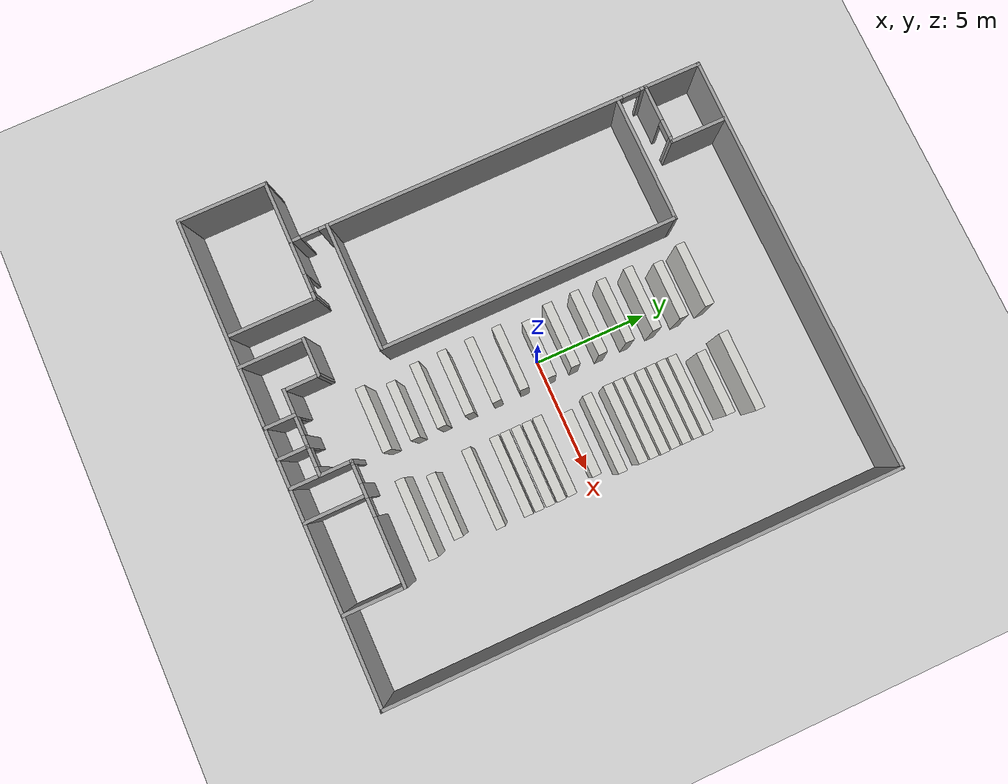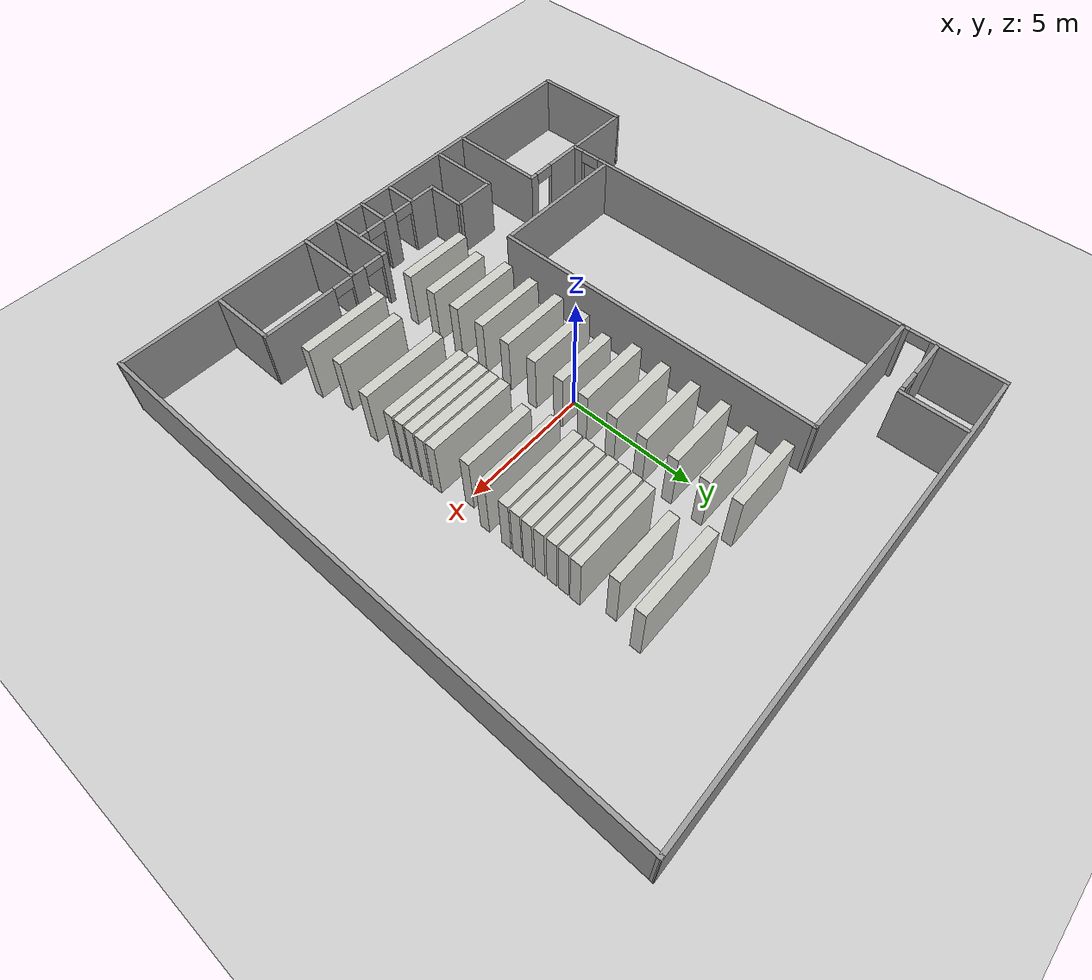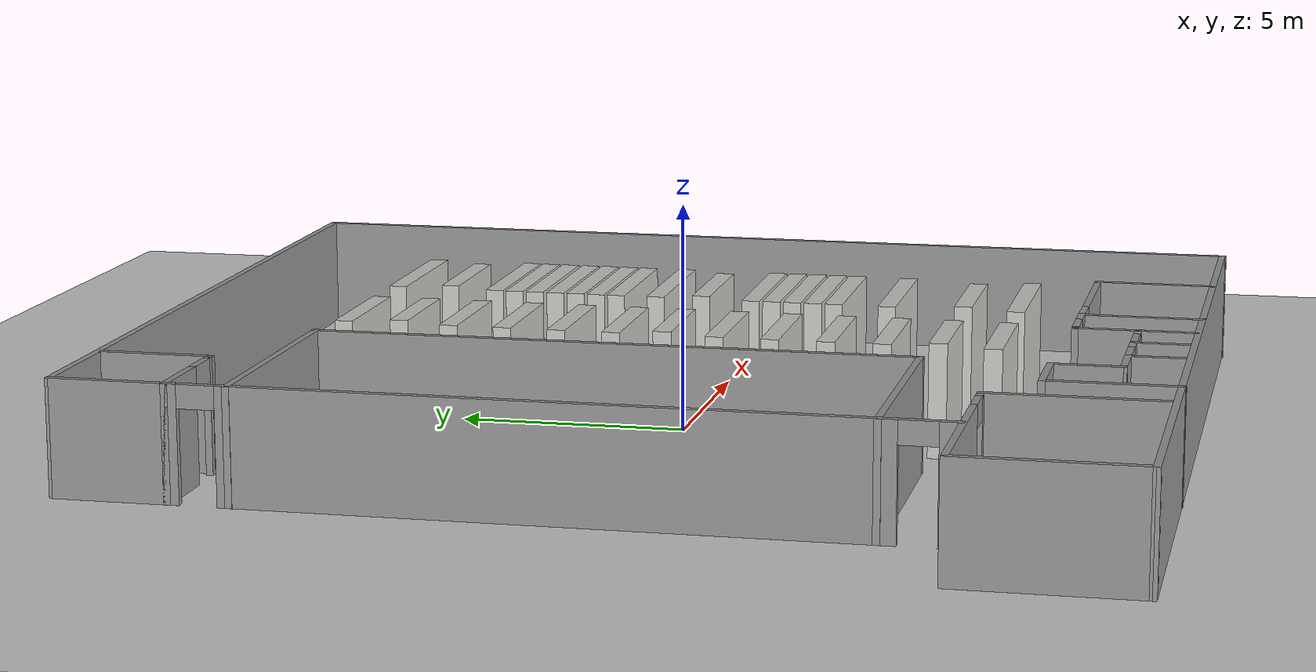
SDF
<sdf version="1.6">
 <world name="default">
  <model name="ground_plane">
   <static>1</static>
   <link name="link">
    <collision name="collision">
     <geometry><plane><normal>0 0 1</normal><size>100 100</size></plane></geometry>
     <surface>
      <contact><collide_bitmask>65535</collide_bitmask></contact>
      <friction><ode><mu>100</mu><mu2>50</mu2></ode></friction>
     </surface>
    </collision>
    <visual name="visual">
     <cast_shadows>0</cast_shadows>
     <geometry><plane><normal>0 0 1</normal><size>100 100</size></plane></geometry>
     <material>
      <script><uri>file://media/materials/scripts/gazebo.material</uri><name>Gazebo/Grey</name></script>
     </material>
    </visual>
   </link>
  </model>
  <model name="bi_mi_og">
   <pose>-0.524305 0.076707 0 0 -0 0</pose>
   <link name="Wall_100">
    <collision name="Wall_100_Collision">
     <geometry><box><size>3.4 0.4 2.5</size></box></geometry>
     <pose>0 0 1.25 0 -0 0</pose>
    </collision>
    <visual name="Wall_100_Visual">
     <pose>0 0 1.25 0 -0 0</pose>
     <geometry><box><size>3.4 0.4 2.5</size></box></geometry>
     <material>
      <script><uri>file://media/materials/scripts/gazebo.material</uri><name>Gazebo/CeilingTiled</name></script>
      <ambient>0.435294 0.796078 0.67451 1</ambient>
     </material>
     <meta><layer>0</layer></meta>
    </visual>
    <pose>4.47382 -1.12861 0 0 -0 0</pose>
   </link>
   <link name="Wall_102">
    <collision name="Wall_102_Collision">
     <geometry><box><size>3.4 0.4 2.5</size></box></geometry>
     <pose>0 0 1.25 0 -0 0</pose>
    </collision>
    <visual name="Wall_102_Visual">
     <pose>0 0 1.25 0 -0 0</pose>
     <geometry><box><size>3.4 0.4 2.5</size></box></geometry>
     <material>
      <script><uri>file://media/materials/scripts/gazebo.material</uri><name>Gazebo/CeilingTiled</name></script>
      <ambient>0.435294 0.796078 0.67451 1</ambient>
     </material>
     <meta><layer>0</layer></meta>
    </visual>
    <pose>4.48903 -1.6002 0 0 -0 0</pose>
   </link>
   <link name="Wall_104">
    <collision name="Wall_104_Collision">
     <geometry><box><size>3.4 0.4 2.5</size></box></geometry>
     <pose>0 0 1.25 0 -0 0</pose>
    </collision>
    <visual name="Wall_104_Visual">
     <pose>0 0 1.25 0 -0 0</pose>
     <geometry><box><size>3.4 0.4 2.5</size></box></geometry>
     <material>
      <script><uri>file://media/materials/scripts/gazebo.material</uri><name>Gazebo/CeilingTiled</name></script>
      <ambient>0.435294 0.796078 0.67451 1</ambient>
     </material>
     <meta><layer>0</layer></meta>
    </visual>
    <pose>4.48824 -2.07161 0 0 -0 0</pose>
   </link>
   <link name="Wall_106">
    <collision name="Wall_106_Collision">
     <geometry><box><size>3.4 0.4 2.5</size></box></geometry>
     <pose>0 0 1.25 0 -0 0</pose>
    </collision>
    <visual name="Wall_106_Visual">
     <pose>0 0 1.25 0 -0 0</pose>
     <geometry><box><size>3.4 0.4 2.5</size></box></geometry>
     <material>
      <script><uri>file://media/materials/scripts/gazebo.material</uri><name>Gazebo/CeilingTiled</name></script>
      <ambient>0.435294 0.796078 0.67451 1</ambient>
     </material>
     <meta><layer>0</layer></meta>
    </visual>
    <pose>4.48903 -2.54278 0 0 -0 0</pose>
   </link>
   <link name="Wall_108">
    <collision name="Wall_108_Collision">
     <geometry><box><size>3.4 0.4 2.5</size></box></geometry>
     <pose>0 0 1.25 0 -0 0</pose>
    </collision>
    <visual name="Wall_108_Visual">
     <pose>0 0 1.25 0 -0 0</pose>
     <geometry><box><size>3.4 0.4 2.5</size></box></geometry>
     <material>
      <script><uri>file://media/materials/scripts/gazebo.material</uri><name>Gazebo/CeilingTiled</name></script>
      <ambient>0.435294 0.796078 0.67451 1</ambient>
     </material>
     <meta><layer>0</layer></meta>
    </visual>
    <pose>4.48824 -3.01499 0 0 -0 0</pose>
   </link>
   <link name="Wall_11">
    <collision name="Wall_11_Collision">
     <geometry><box><size>21.3169 0.15 2.5</size></box></geometry>
     <pose>0 0 1.25 0 -0 0</pose>
    </collision>
    <visual name="Wall_11_Visual">
     <pose>0 0 1.25 0 -0 0</pose>
     <geometry><box><size>21.3169 0.15 2.5</size></box></geometry>
     <material>
      <script><uri>file://media/materials/scripts/gazebo.material</uri><name>Gazebo/Grey</name></script>
      <ambient>1 1 1 1</ambient>
     </material>
     <meta><layer>0</layer></meta>
    </visual>
    <pose>-3.3e-05 -11.1726 0 0 -0 0.001286</pose>
   </link>
   <link name="Wall_110">
    <collision name="Wall_110_Collision">
     <geometry><box><size>3.4 0.4 2.5</size></box></geometry>
     <pose>0 0 1.25 0 -0 0</pose>
    </collision>
    <visual name="Wall_110_Visual">
     <pose>0 0 1.25 0 -0 0</pose>
     <geometry><box><size>3.4 0.4 2.5</size></box></geometry>
     <material>
      <script><uri>file://media/materials/scripts/gazebo.material</uri><name>Gazebo/CeilingTiled</name></script>
      <ambient>0.435294 0.796078 0.67451 1</ambient>
     </material>
     <meta><layer>0</layer></meta>
    </visual>
    <pose>4.47361 -4.21578 0 0 -0 0</pose>
   </link>
   <link name="Wall_112">
    <collision name="Wall_112_Collision">
     <geometry><box><size>3.4 0.4 2.5</size></box></geometry>
     <pose>0 0 1.25 0 -0 0</pose>
    </collision>
    <visual name="Wall_112_Visual">
     <pose>0 0 1.25 0 -0 0</pose>
     <geometry><box><size>3.4 0.4 2.5</size></box></geometry>
     <material>
      <script><uri>file://media/materials/scripts/gazebo.material</uri><name>Gazebo/CeilingTiled</name></script>
      <ambient>0.435294 0.796078 0.67451 1</ambient>
     </material>
     <meta><layer>0</layer></meta>
    </visual>
    <pose>4.48555 -7.08842 0 0 -0 0</pose>
   </link>
   <link name="Wall_114">
    <collision name="Wall_114_Collision">
     <geometry><box><size>2.75 0.4 2.5</size></box></geometry>
     <pose>0 0 1.25 0 -0 0</pose>
    </collision>
    <visual name="Wall_114_Visual">
     <pose>0 0 1.25 0 -0 0</pose>
     <geometry><box><size>2.75 0.4 2.5</size></box></geometry>
     <material>
      <script><uri>file://media/materials/scripts/gazebo.material</uri><name>Gazebo/CeilingTiled</name></script>
      <ambient>0.435294 0.796078 0.67451 1</ambient>
     </material>
     <meta><layer>0</layer></meta>
    </visual>
    <pose>4.48252 -5.8822 0 0 -0 0</pose>
   </link>
   <link name="Wall_13">
    <collision name="Wall_13_Collision">
     <geometry><box><size>22.5 0.15 2.5</size></box></geometry>
     <pose>0 0 1.25 0 -0 0</pose>
    </collision>
    <visual name="Wall_13_Visual">
     <pose>0 0 1.25 0 -0 0</pose>
     <geometry><box><size>22.5 0.15 2.5</size></box></geometry>
     <material>
      <script><uri>file://media/materials/scripts/gazebo.material</uri><name>Gazebo/Grey</name></script>
      <ambient>1 1 1 1</ambient>
     </material>
     <meta><layer>0</layer></meta>
    </visual>
    <pose>10.5834 -0.004082 0 0 -0 1.5708</pose>
   </link>
   <link name="Wall_15">
    <collision name="Wall_15_Collision">
     <geometry><box><size>18.6299 0.15 2.5</size></box></geometry>
     <pose>0 0 1.25 0 -0 0</pose>
    </collision>
    <visual name="Wall_15_Visual">
     <pose>0 0 1.25 0 -0 0</pose>
     <geometry><box><size>18.6299 0.15 2.5</size></box></geometry>
     <material>
      <script><uri>file://media/materials/scripts/gazebo.material</uri><name>Gazebo/Grey</name></script>
      <ambient>1 1 1 1</ambient>
     </material>
     <meta><layer>0</layer></meta>
    </visual>
    <pose>1.34347 11.1709 0 0 -0 -3.13942</pose>
   </link>
   <link name="Wall_17">
    <collision name="Wall_17_Collision">
     <geometry><box><size>2.6 0.15 2.5</size></box></geometry>
     <pose>0 0 1.25 0 -0 0</pose>
    </collision>
    <visual name="Wall_17_Visual">
     <pose>0 0 1.25 0 -0 0</pose>
     <geometry><box><size>2.6 0.15 2.5</size></box></geometry>
     <material>
      <script><uri>file://media/materials/scripts/gazebo.material</uri><name>Gazebo/Grey</name></script>
      <ambient>1 1 1 1</ambient>
     </material>
     <meta><layer>0</layer></meta>
    </visual>
    <pose>-7.89648 9.92581 0 0 -0 -1.5708</pose>
   </link>
   <link name="Wall_19">
    <pose>-6.59648 8.70081 0 0 -0 0</pose>
    <visual name="Wall_19_Visual_0">
     <pose>-0.546292 0 1.25 0 -0 0</pose>
     <geometry><box><size>1.65742 0.15 2.5</size></box></geometry>
     <material>
      <script><uri>file://media/materials/scripts/gazebo.material</uri><name>Gazebo/Grey</name></script>
      <ambient>1 1 1 1</ambient>
     </material>
     <meta><layer>0</layer></meta>
    </visual>
    <collision name="Wall_19_Collision_0">
     <geometry><box><size>1.65742 0.15 2.5</size></box></geometry>
     <pose>-0.546292 0 1.25 0 -0 0</pose>
    </collision>
    <visual name="Wall_19_Visual_1">
     <pose>1.22871 0 1.25 0 -0 0</pose>
     <geometry><box><size>0.292584 0.15 2.5</size></box></geometry>
     <material>
      <script><uri>file://media/materials/scripts/gazebo.material</uri><name>Gazebo/Grey</name></script>
      <ambient>1 1 1 1</ambient>
     </material>
     <meta><layer>0</layer></meta>
    </visual>
    <collision name="Wall_19_Collision_1">
     <geometry><box><size>0.292584 0.15 2.5</size></box></geometry>
     <pose>1.22871 0 1.25 0 -0 0</pose>
    </collision>
    <visual name="Wall_19_Visual_2">
     <pose>0.682416 0 2.25 0 -0 0</pose>
     <geometry><box><size>0.8 0.15 0.5</size></box></geometry>
     <material>
      <script><uri>file://media/materials/scripts/gazebo.material</uri><name>Gazebo/Grey</name></script>
      <ambient>1 1 1 1</ambient>
     </material>
     <meta><layer>0</layer></meta>
    </visual>
    <collision name="Wall_19_Collision_2">
     <geometry><box><size>0.8 0.15 0.5</size></box></geometry>
     <pose>0.682416 0 2.25 0 -0 0</pose>
    </collision>
   </link>
   <link name="Wall_20">
    <collision name="Wall_20_Collision">
     <geometry><box><size>2.5 0.15 2.5</size></box></geometry>
     <pose>0 0 1.25 0 -0 0</pose>
    </collision>
    <visual name="Wall_20_Visual">
     <pose>0 0 1.25 0 -0 0</pose>
     <geometry><box><size>2.5 0.15 2.5</size></box></geometry>
     <material>
      <script><uri>file://media/materials/scripts/gazebo.material</uri><name>Gazebo/Grey</name></script>
      <ambient>1 1 1 1</ambient>
     </material>
     <meta><layer>0</layer></meta>
    </visual>
    <pose>-5.29648 9.8758 0 0 -0 1.5708</pose>
   </link>
   <link name="Wall_22">
    <pose>-7.89648 0.700805 0 0 -0 -1.5708</pose>
    <visual name="Wall_22_Visual_0">
     <pose>-7.90982 0 1.25 0 -0 0</pose>
     <geometry><box><size>0.330356 0.15 2.5</size></box></geometry>
     <material>
      <script><uri>file://media/materials/scripts/gazebo.material</uri><name>Gazebo/Grey</name></script>
      <ambient>1 1 1 1</ambient>
     </material>
     <meta><layer>0</layer></meta>
    </visual>
    <collision name="Wall_22_Collision_0">
     <geometry><box><size>0.330356 0.15 2.5</size></box></geometry>
     <pose>-7.90982 0 1.25 0 -0 0</pose>
    </collision>
    <visual name="Wall_22_Visual_1">
     <pose>-0.08023 0 1.25 0 -0 0</pose>
     <geometry><box><size>13.7288 0.15 2.5</size></box></geometry>
     <material>
      <script><uri>file://media/materials/scripts/gazebo.material</uri><name>Gazebo/Grey</name></script>
      <ambient>1 1 1 1</ambient>
     </material>
     <meta><layer>0</layer></meta>
    </visual>
    <collision name="Wall_22_Collision_1">
     <geometry><box><size>13.7288 0.15 2.5</size></box></geometry>
     <pose>-0.08023 0 1.25 0 -0 0</pose>
    </collision>
    <visual name="Wall_22_Visual_2">
     <pose>7.82959 0 1.25 0 -0 0</pose>
     <geometry><box><size>0.490815 0.15 2.5</size></box></geometry>
     <material>
      <script><uri>file://media/materials/scripts/gazebo.material</uri><name>Gazebo/Grey</name></script>
      <ambient>1 1 1 1</ambient>
     </material>
     <meta><layer>0</layer></meta>
    </visual>
    <collision name="Wall_22_Collision_2">
     <geometry><box><size>0.490815 0.15 2.5</size></box></geometry>
     <pose>7.82959 0 1.25 0 -0 0</pose>
    </collision>
    <visual name="Wall_22_Visual_3">
     <pose>-7.34464 0 2.25 0 -0 0</pose>
     <geometry><box><size>0.8 0.15 0.5</size></box></geometry>
     <material>
      <script><uri>file://media/materials/scripts/gazebo.material</uri><name>Gazebo/Grey</name></script>
      <ambient>1 1 1 1</ambient>
     </material>
     <meta><layer>0</layer></meta>
    </visual>
    <collision name="Wall_22_Collision_3">
     <geometry><box><size>0.8 0.15 0.5</size></box></geometry>
     <pose>-7.34464 0 2.25 0 -0 0</pose>
    </collision>
    <visual name="Wall_22_Visual_4">
     <pose>7.18419 0 2.25 0 -0 0</pose>
     <geometry><box><size>0.8 0.15 0.5</size></box></geometry>
     <material>
      <script><uri>file://media/materials/scripts/gazebo.material</uri><name>Gazebo/Grey</name></script>
      <ambient>1 1 1 1</ambient>
     </material>
     <meta><layer>0</layer></meta>
    </visual>
    <collision name="Wall_22_Collision_4">
     <geometry><box><size>0.8 0.15 0.5</size></box></geometry>
     <pose>7.18419 0 2.25 0 -0 0</pose>
    </collision>
   </link>
   <link name="Wall_24">
    <collision name="Wall_24_Collision">
     <geometry><box><size>4 0.15 2.5</size></box></geometry>
     <pose>0 0 1.25 0 -0 0</pose>
    </collision>
    <visual name="Wall_24_Visual">
     <pose>0 0 1.25 0 -0 0</pose>
     <geometry><box><size>4 0.15 2.5</size></box></geometry>
     <material>
      <script><uri>file://media/materials/scripts/gazebo.material</uri><name>Gazebo/Grey</name></script>
      <ambient>1 1 1 1</ambient>
     </material>
     <meta><layer>0</layer></meta>
    </visual>
    <pose>-10.5835 -9.2612 0 0 -0 1.5708</pose>
   </link>
   <link name="Wall_26">
    <pose>-7.94498 -7.3362 0 0 -0 0</pose>
    <visual name="Wall_26_Visual_0">
     <pose>-0.579795 0 1.25 0 -0 0</pose>
     <geometry><box><size>4.26728 0.15 2.5</size></box></geometry>
     <material>
      <script><uri>file://media/materials/scripts/gazebo.material</uri><name>Gazebo/Grey</name></script>
      <ambient>1 1 1 1</ambient>
     </material>
     <meta><layer>0</layer></meta>
    </visual>
    <collision name="Wall_26_Collision_0">
     <geometry><box><size>4.26728 0.15 2.5</size></box></geometry>
     <pose>-0.579795 0 1.25 0 -0 0</pose>
    </collision>
    <visual name="Wall_26_Visual_1">
     <pose>2.53364 0 1.25 0 -0 0</pose>
     <geometry><box><size>0.359591 0.15 2.5</size></box></geometry>
     <material>
      <script><uri>file://media/materials/scripts/gazebo.material</uri><name>Gazebo/Grey</name></script>
      <ambient>1 1 1 1</ambient>
     </material>
     <meta><layer>0</layer></meta>
    </visual>
    <collision name="Wall_26_Collision_1">
     <geometry><box><size>0.359591 0.15 2.5</size></box></geometry>
     <pose>2.53364 0 1.25 0 -0 0</pose>
    </collision>
    <visual name="Wall_26_Visual_2">
     <pose>1.95384 0 2.25 0 -0 0</pose>
     <geometry><box><size>0.8 0.15 0.5</size></box></geometry>
     <material>
      <script><uri>file://media/materials/scripts/gazebo.material</uri><name>Gazebo/Grey</name></script>
      <ambient>1 1 1 1</ambient>
     </material>
     <meta><layer>0</layer></meta>
    </visual>
    <collision name="Wall_26_Collision_2">
     <geometry><box><size>0.8 0.15 0.5</size></box></geometry>
     <pose>1.95384 0 2.25 0 -0 0</pose>
    </collision>
   </link>
   <link name="Wall_28">
    <collision name="Wall_28_Collision">
     <geometry><box><size>3.9 0.15 2.5</size></box></geometry>
     <pose>0 0 1.25 0 -0 0</pose>
    </collision>
    <visual name="Wall_28_Visual">
     <pose>0 0 1.25 0 -0 0</pose>
     <geometry><box><size>3.9 0.15 2.5</size></box></geometry>
     <material>
      <script><uri>file://media/materials/scripts/gazebo.material</uri><name>Gazebo/Grey</name></script>
      <ambient>1 1 1 1</ambient>
     </material>
     <meta><layer>0</layer></meta>
    </visual>
    <pose>-5.30648 -9.2112 0 0 -0 -1.5708</pose>
   </link>
   <link name="Wall_30">
    <collision name="Wall_30_Collision">
     <geometry><box><size>5.75 0.15 2.5</size></box></geometry>
     <pose>0 0 1.25 0 -0 0</pose>
    </collision>
    <visual name="Wall_30_Visual">
     <pose>0 0 1.25 0 -0 0</pose>
     <geometry><box><size>5.75 0.15 2.5</size></box></geometry>
     <material>
      <script><uri>file://media/materials/scripts/gazebo.material</uri><name>Gazebo/Grey</name></script>
      <ambient>1 1 1 1</ambient>
     </material>
     <meta><layer>0</layer></meta>
    </visual>
    <pose>-5.10418 -5.69691 0 0 -0 0</pose>
   </link>
   <link name="Wall_31">
    <collision name="Wall_31_Collision">
     <geometry><box><size>13.25 0.15 2.5</size></box></geometry>
     <pose>0 0 1.25 0 -0 0</pose>
    </collision>
    <visual name="Wall_31_Visual">
     <pose>0 0 1.25 0 -0 0</pose>
     <geometry><box><size>13.25 0.15 2.5</size></box></geometry>
     <material>
      <script><uri>file://media/materials/scripts/gazebo.material</uri><name>Gazebo/Grey</name></script>
      <ambient>1 1 1 1</ambient>
     </material>
     <meta><layer>0</layer></meta>
    </visual>
    <pose>-2.30418 0.853088 0 0 -0 1.5708</pose>
   </link>
   <link name="Wall_32">
    <collision name="Wall_32_Collision">
     <geometry><box><size>5.75 0.15 2.5</size></box></geometry>
     <pose>0 0 1.25 0 -0 0</pose>
    </collision>
    <visual name="Wall_32_Visual">
     <pose>0 0 1.25 0 -0 0</pose>
     <geometry><box><size>5.75 0.15 2.5</size></box></geometry>
     <material>
      <script><uri>file://media/materials/scripts/gazebo.material</uri><name>Gazebo/Grey</name></script>
      <ambient>1 1 1 1</ambient>
     </material>
     <meta><layer>0</layer></meta>
    </visual>
    <pose>-5.10418 7.40309 0 0 -0 3.14159</pose>
   </link>
   <link name="Wall_34">
    <collision name="Wall_34_Collision">
     <geometry><box><size>2.75 0.15 2.5</size></box></geometry>
     <pose>0 0 1.25 0 -0 0</pose>
    </collision>
    <visual name="Wall_34_Visual">
     <pose>0 0 1.25 0 -0 0</pose>
     <geometry><box><size>2.75 0.15 2.5</size></box></geometry>
     <material>
      <script><uri>file://media/materials/scripts/gazebo.material</uri><name>Gazebo/Grey</name></script>
      <ambient>1 1 1 1</ambient>
     </material>
     <meta><layer>0</layer></meta>
    </visual>
    <pose>6.70073 -9.83844 0 0 -0 1.5708</pose>
   </link>
   <link name="Wall_35">
    <pose>4.02573 -8.53843 0 0 -0 3.14159</pose>
    <visual name="Wall_35_Visual_0">
     <pose>-1.23302 0 1.25 0 -0 0</pose>
     <geometry><box><size>3.03397 0.15 2.5</size></box></geometry>
     <material>
      <script><uri>file://media/materials/scripts/gazebo.material</uri><name>Gazebo/Grey</name></script>
      <ambient>1 1 1 1</ambient>
     </material>
     <meta><layer>0</layer></meta>
    </visual>
    <collision name="Wall_35_Collision_0">
     <geometry><box><size>3.03397 0.15 2.5</size></box></geometry>
     <pose>-1.23302 0 1.25 0 -0 0</pose>
    </collision>
    <visual name="Wall_35_Visual_1">
     <pose>1.39809 0 1.25 0 -0 0</pose>
     <geometry><box><size>0.62824 0.15 2.5</size></box></geometry>
     <material>
      <script><uri>file://media/materials/scripts/gazebo.material</uri><name>Gazebo/Grey</name></script>
      <ambient>1 1 1 1</ambient>
     </material>
     <meta><layer>0</layer></meta>
    </visual>
    <collision name="Wall_35_Collision_1">
     <geometry><box><size>0.62824 0.15 2.5</size></box></geometry>
     <pose>1.39809 0 1.25 0 -0 0</pose>
    </collision>
    <visual name="Wall_35_Visual_2">
     <pose>2.6311 0 1.25 0 -0 0</pose>
     <geometry><box><size>0.237794 0.15 2.5</size></box></geometry>
     <material>
      <script><uri>file://media/materials/scripts/gazebo.material</uri><name>Gazebo/Grey</name></script>
      <ambient>1 1 1 1</ambient>
     </material>
     <meta><layer>0</layer></meta>
    </visual>
    <collision name="Wall_35_Collision_2">
     <geometry><box><size>0.237794 0.15 2.5</size></box></geometry>
     <pose>2.6311 0 1.25 0 -0 0</pose>
    </collision>
    <visual name="Wall_35_Visual_3">
     <pose>0.683966 0 2.25 0 -0 0</pose>
     <geometry><box><size>0.8 0.15 0.5</size></box></geometry>
     <material>
      <script><uri>file://media/materials/scripts/gazebo.material</uri><name>Gazebo/Grey</name></script>
      <ambient>1 1 1 1</ambient>
     </material>
     <meta><layer>0</layer></meta>
    </visual>
    <collision name="Wall_35_Collision_3">
     <geometry><box><size>0.8 0.15 0.5</size></box></geometry>
     <pose>0.683966 0 2.25 0 -0 0</pose>
    </collision>
    <visual name="Wall_35_Visual_4">
     <pose>2.11221 0 2.25 0 -0 0</pose>
     <geometry><box><size>0.8 0.15 0.5</size></box></geometry>
     <material>
      <script><uri>file://media/materials/scripts/gazebo.material</uri><name>Gazebo/Grey</name></script>
      <ambient>1 1 1 1</ambient>
     </material>
     <meta><layer>0</layer></meta>
    </visual>
    <collision name="Wall_35_Collision_4">
     <geometry><box><size>0.8 0.15 0.5</size></box></geometry>
     <pose>2.11221 0 2.25 0 -0 0</pose>
    </collision>
   </link>
   <link name="Wall_36">
    <collision name="Wall_36_Collision">
     <geometry><box><size>2.75 0.15 2.5</size></box></geometry>
     <pose>0 0 1.25 0 -0 0</pose>
    </collision>
    <visual name="Wall_36_Visual">
     <pose>0 0 1.25 0 -0 0</pose>
     <geometry><box><size>2.75 0.15 2.5</size></box></geometry>
     <material>
      <script><uri>file://media/materials/scripts/gazebo.material</uri><name>Gazebo/Grey</name></script>
      <ambient>1 1 1 1</ambient>
     </material>
     <meta><layer>0</layer></meta>
    </visual>
    <pose>1.35073 -9.83844 0 0 -0 -1.5708</pose>
   </link>
   <link name="Wall_38">
    <collision name="Wall_38_Collision">
     <geometry><box><size>2.75 0.15 2.5</size></box></geometry>
     <pose>0 0 1.25 0 -0 0</pose>
    </collision>
    <visual name="Wall_38_Visual">
     <pose>0 0 1.25 0 -0 0</pose>
     <geometry><box><size>2.75 0.15 2.5</size></box></geometry>
     <material>
      <script><uri>file://media/materials/scripts/gazebo.material</uri><name>Gazebo/Grey</name></script>
      <ambient>1 1 1 1</ambient>
     </material>
     <meta><layer>0</layer></meta>
    </visual>
    <pose>2.81881 -9.8639 0 0 -0 -1.5708</pose>
   </link>
   <link name="Wall_40">
    <pose>-0.499477 -9.89119 0 0 -0 3.14159</pose>
    <visual name="Wall_40_Visual_0">
     <pose>-1.70534 0 1.25 0 -0 0</pose>
     <geometry><box><size>0.43932 0.15 2.5</size></box></geometry>
     <material>
      <script><uri>file://media/materials/scripts/gazebo.material</uri><name>Gazebo/Grey</name></script>
      <ambient>1 1 1 1</ambient>
     </material>
     <meta><layer>0</layer></meta>
    </visual>
    <collision name="Wall_40_Collision_0">
     <geometry><box><size>0.43932 0.15 2.5</size></box></geometry>
     <pose>-1.70534 0 1.25 0 -0 0</pose>
    </collision>
    <visual name="Wall_40_Visual_1">
     <pose>-0.401819 0 1.25 0 -0 0</pose>
     <geometry><box><size>0.567723 0.15 2.5</size></box></geometry>
     <material>
      <script><uri>file://media/materials/scripts/gazebo.material</uri><name>Gazebo/Grey</name></script>
      <ambient>1 1 1 1</ambient>
     </material>
     <meta><layer>0</layer></meta>
    </visual>
    <collision name="Wall_40_Collision_1">
     <geometry><box><size>0.567723 0.15 2.5</size></box></geometry>
     <pose>-0.401819 0 1.25 0 -0 0</pose>
    </collision>
    <visual name="Wall_40_Visual_2">
     <pose>1.30352 0 1.25 0 -0 0</pose>
     <geometry><box><size>1.24296 0.15 2.5</size></box></geometry>
     <material>
      <script><uri>file://media/materials/scripts/gazebo.material</uri><name>Gazebo/Grey</name></script>
      <ambient>1 1 1 1</ambient>
     </material>
     <meta><layer>0</layer></meta>
    </visual>
    <collision name="Wall_40_Collision_2">
     <geometry><box><size>1.24296 0.15 2.5</size></box></geometry>
     <pose>1.30352 0 1.25 0 -0 0</pose>
    </collision>
    <visual name="Wall_40_Visual_3">
     <pose>-1.08568 0 2.25 0 -0 0</pose>
     <geometry><box><size>0.8 0.15 0.5</size></box></geometry>
     <material>
      <script><uri>file://media/materials/scripts/gazebo.material</uri><name>Gazebo/Grey</name></script>
      <ambient>1 1 1 1</ambient>
     </material>
     <meta><layer>0</layer></meta>
    </visual>
    <collision name="Wall_40_Collision_3">
     <geometry><box><size>0.8 0.15 0.5</size></box></geometry>
     <pose>-1.08568 0 2.25 0 -0 0</pose>
    </collision>
    <visual name="Wall_40_Visual_4">
     <pose>0.282043 0 2.25 0 -0 0</pose>
     <geometry><box><size>0.8 0.15 0.5</size></box></geometry>
     <material>
      <script><uri>file://media/materials/scripts/gazebo.material</uri><name>Gazebo/Grey</name></script>
      <ambient>1 1 1 1</ambient>
     </material>
     <meta><layer>0</layer></meta>
    </visual>
    <collision name="Wall_40_Collision_4">
     <geometry><box><size>0.8 0.15 0.5</size></box></geometry>
     <pose>0.282043 0 2.25 0 -0 0</pose>
    </collision>
   </link>
   <link name="Wall_42">
    <collision name="Wall_42_Collision">
     <geometry><box><size>1.65 0.15 2.5</size></box></geometry>
     <pose>0 0 1.25 0 -0 0</pose>
    </collision>
    <visual name="Wall_42_Visual">
     <pose>0 0 1.25 0 -0 0</pose>
     <geometry><box><size>1.65 0.15 2.5</size></box></geometry>
     <material>
      <script><uri>file://media/materials/scripts/gazebo.material</uri><name>Gazebo/Grey</name></script>
      <ambient>1 1 1 1</ambient>
     </material>
     <meta><layer>0</layer></meta>
    </visual>
    <pose>-2.34948 -9.14119 0 0 -0 1.5708</pose>
   </link>
   <link name="Wall_44">
    <collision name="Wall_44_Collision">
     <geometry><box><size>1.75 0.15 2.5</size></box></geometry>
     <pose>0 0 1.25 0 -0 0</pose>
    </collision>
    <visual name="Wall_44_Visual">
     <pose>0 0 1.25 0 -0 0</pose>
     <geometry><box><size>1.75 0.15 2.5</size></box></geometry>
     <material>
      <script><uri>file://media/materials/scripts/gazebo.material</uri><name>Gazebo/Grey</name></script>
      <ambient>1 1 1 1</ambient>
     </material>
     <meta><layer>0</layer></meta>
    </visual>
    <pose>-3.14948 -8.39119 0 0 -0 3.14159</pose>
   </link>
   <link name="Wall_45">
    <collision name="Wall_45_Collision">
     <geometry><box><size>2.95 0.15 2.5</size></box></geometry>
     <pose>0 0 1.25 0 -0 0</pose>
    </collision>
    <visual name="Wall_45_Visual">
     <pose>0 0 1.25 0 -0 0</pose>
     <geometry><box><size>2.95 0.15 2.5</size></box></geometry>
     <material>
      <script><uri>file://media/materials/scripts/gazebo.material</uri><name>Gazebo/Grey</name></script>
      <ambient>1 1 1 1</ambient>
     </material>
     <meta><layer>0</layer></meta>
    </visual>
    <pose>-3.94948 -9.7912 0 0 -0 -1.5708</pose>
   </link>
   <link name="Wall_47">
    <collision name="Wall_47_Collision">
     <geometry><box><size>1.4 0.15 2.5</size></box></geometry>
     <pose>0 0 1.25 0 -0 0</pose>
    </collision>
    <visual name="Wall_47_Visual">
     <pose>0 0 1.25 0 -0 0</pose>
     <geometry><box><size>1.4 0.15 2.5</size></box></geometry>
     <material>
      <script><uri>file://media/materials/scripts/gazebo.material</uri><name>Gazebo/Grey</name></script>
      <ambient>1 1 1 1</ambient>
     </material>
     <meta><layer>0</layer></meta>
    </visual>
    <pose>-1.26448 -10.5162 0 0 -0 -1.5708</pose>
   </link>
   <link name="Wall_49">
    <collision name="Wall_49_Collision">
     <geometry><box><size>1.4 0.15 2.5</size></box></geometry>
     <pose>0 0 1.25 0 -0 0</pose>
    </collision>
    <visual name="Wall_49_Visual">
     <pose>0 0 1.25 0 -0 0</pose>
     <geometry><box><size>1.4 0.15 2.5</size></box></geometry>
     <material>
      <script><uri>file://media/materials/scripts/gazebo.material</uri><name>Gazebo/Grey</name></script>
      <ambient>1 1 1 1</ambient>
     </material>
     <meta><layer>0</layer></meta>
    </visual>
    <pose>0.103523 -10.5162 0 0 -0 -1.5708</pose>
   </link>
   <link name="Wall_51">
    <collision name="Wall_51_Collision">
     <geometry><box><size>2.8 0.4 2.5</size></box></geometry>
     <pose>0 0 1.25 0 -0 0</pose>
    </collision>
    <visual name="Wall_51_Visual">
     <pose>0 0 1.25 0 -0 0</pose>
     <geometry><box><size>2.8 0.4 2.5</size></box></geometry>
     <material>
      <script><uri>file://media/materials/scripts/gazebo.material</uri><name>Gazebo/CeilingTiled</name></script>
      <ambient>0.435294 0.796078 0.67451 1</ambient>
     </material>
     <meta><layer>0</layer></meta>
    </visual>
    <pose>0.173523 -7.08307 0 0 -0 0</pose>
   </link>
   <link name="Wall_53">
    <collision name="Wall_53_Collision">
     <geometry><box><size>2.5 0.4 2.5</size></box></geometry>
     <pose>0 0 1.25 0 -0 0</pose>
    </collision>
    <visual name="Wall_53_Visual">
     <pose>0 0 1.25 0 -0 0</pose>
     <geometry><box><size>2.5 0.4 2.5</size></box></geometry>
     <material>
      <script><uri>file://media/materials/scripts/gazebo.material</uri><name>Gazebo/CeilingTiled</name></script>
      <ambient>0.435294 0.796078 0.67451 1</ambient>
     </material>
     <meta><layer>0</layer></meta>
    </visual>
    <pose>0.341315 -5.87999 0 0 -0 0</pose>
   </link>
   <link name="Wall_55">
    <collision name="Wall_55_Collision">
     <geometry><box><size>2.8 0.4 2.5</size></box></geometry>
     <pose>0 0 1.25 0 -0 0</pose>
    </collision>
    <visual name="Wall_55_Visual">
     <pose>0 0 1.25 0 -0 0</pose>
     <geometry><box><size>2.8 0.4 2.5</size></box></geometry>
     <material>
      <script><uri>file://media/materials/scripts/gazebo.material</uri><name>Gazebo/CeilingTiled</name></script>
      <ambient>0.435294 0.796078 0.67451 1</ambient>
     </material>
     <meta><layer>0</layer></meta>
    </visual>
    <pose>0.185205 -4.72831 0 0 -0 0</pose>
   </link>
   <link name="Wall_57">
    <collision name="Wall_57_Collision">
     <geometry><box><size>2.8 0.4 2.5</size></box></geometry>
     <pose>0 0 1.25 0 -0 0</pose>
    </collision>
    <visual name="Wall_57_Visual">
     <pose>0 0 1.25 0 -0 0</pose>
     <geometry><box><size>2.8 0.4 2.5</size></box></geometry>
     <material>
      <script><uri>file://media/materials/scripts/gazebo.material</uri><name>Gazebo/CeilingTiled</name></script>
      <ambient>0.435294 0.796078 0.67451 1</ambient>
     </material>
     <meta><layer>0</layer></meta>
    </visual>
    <pose>0.167046 -3.52746 0 0 -0 0</pose>
   </link>
   <link name="Wall_60">
    <collision name="Wall_60_Collision">
     <geometry><box><size>2.8 0.4 2.5</size></box></geometry>
     <pose>0 0 1.25 0 -0 0</pose>
    </collision>
    <visual name="Wall_60_Visual">
     <pose>0 0 1.25 0 -0 0</pose>
     <geometry><box><size>2.8 0.4 2.5</size></box></geometry>
     <material>
      <script><uri>file://media/materials/scripts/gazebo.material</uri><name>Gazebo/CeilingTiled</name></script>
      <ambient>0.435294 0.796078 0.67451 1</ambient>
     </material>
     <meta><layer>0</layer></meta>
    </visual>
    <pose>0.166915 -2.32446 0 0 -0 0</pose>
   </link>
   <link name="Wall_62">
    <collision name="Wall_62_Collision">
     <geometry><box><size>2.8 0.4 2.5</size></box></geometry>
     <pose>0 0 1.25 0 -0 0</pose>
    </collision>
    <visual name="Wall_62_Visual">
     <pose>0 0 1.25 0 -0 0</pose>
     <geometry><box><size>2.8 0.4 2.5</size></box></geometry>
     <material>
      <script><uri>file://media/materials/scripts/gazebo.material</uri><name>Gazebo/CeilingTiled</name></script>
      <ambient>0.435294 0.796078 0.67451 1</ambient>
     </material>
     <meta><layer>0</layer></meta>
    </visual>
    <pose>0.167307 -1.12146 0 0 -0 0</pose>
   </link>
   <link name="Wall_64">
    <collision name="Wall_64_Collision">
     <geometry><box><size>2.5 0.4 2.5</size></box></geometry>
     <pose>0 0 1.25 0 -0 0</pose>
    </collision>
    <visual name="Wall_64_Visual">
     <pose>0 0 1.25 0 -0 0</pose>
     <geometry><box><size>2.5 0.4 2.5</size></box></geometry>
     <material>
      <script><uri>file://media/materials/scripts/gazebo.material</uri><name>Gazebo/CeilingTiled</name></script>
      <ambient>0.435294 0.796078 0.67451 1</ambient>
     </material>
     <meta><layer>0</layer></meta>
    </visual>
    <pose>0.318523 0.081805 0 0 -0 0</pose>
   </link>
   <link name="Wall_66">
    <collision name="Wall_66_Collision">
     <geometry><box><size>2.8 0.4 2.5</size></box></geometry>
     <pose>0 0 1.25 0 -0 0</pose>
    </collision>
    <visual name="Wall_66_Visual">
     <pose>0 0 1.25 0 -0 0</pose>
     <geometry><box><size>2.8 0.4 2.5</size></box></geometry>
     <material>
      <script><uri>file://media/materials/scripts/gazebo.material</uri><name>Gazebo/CeilingTiled</name></script>
      <ambient>0.435294 0.796078 0.67451 1</ambient>
     </material>
     <meta><layer>0</layer></meta>
    </visual>
    <pose>0.167046 1.14222 0 0 -0 0</pose>
   </link>
   <link name="Wall_68">
    <collision name="Wall_68_Collision">
     <geometry><box><size>2.8 0.4 2.5</size></box></geometry>
     <pose>0 0 1.25 0 -0 0</pose>
    </collision>
    <visual name="Wall_68_Visual">
     <pose>0 0 1.25 0 -0 0</pose>
     <geometry><box><size>2.8 0.4 2.5</size></box></geometry>
     <material>
      <script><uri>file://media/materials/scripts/gazebo.material</uri><name>Gazebo/CeilingTiled</name></script>
      <ambient>0.435294 0.796078 0.67451 1</ambient>
     </material>
     <meta><layer>0</layer></meta>
    </visual>
    <pose>0.167176 2.34767 0 0 -0 0</pose>
   </link>
   <link name="Wall_70">
    <collision name="Wall_70_Collision">
     <geometry><box><size>2.8 0.4 2.5</size></box></geometry>
     <pose>0 0 1.25 0 -0 0</pose>
    </collision>
    <visual name="Wall_70_Visual">
     <pose>0 0 1.25 0 -0 0</pose>
     <geometry><box><size>2.8 0.4 2.5</size></box></geometry>
     <material>
      <script><uri>file://media/materials/scripts/gazebo.material</uri><name>Gazebo/CeilingTiled</name></script>
      <ambient>0.435294 0.796078 0.67451 1</ambient>
     </material>
     <meta><layer>0</layer></meta>
    </visual>
    <pose>0.167307 3.5508 0 0 -0 0</pose>
   </link>
   <link name="Wall_72">
    <collision name="Wall_72_Collision">
     <geometry><box><size>2.8 0.4 2.5</size></box></geometry>
     <pose>0 0 1.25 0 -0 0</pose>
    </collision>
    <visual name="Wall_72_Visual">
     <pose>0 0 1.25 0 -0 0</pose>
     <geometry><box><size>2.8 0.4 2.5</size></box></geometry>
     <material>
      <script><uri>file://media/materials/scripts/gazebo.material</uri><name>Gazebo/CeilingTiled</name></script>
      <ambient>0.435294 0.796078 0.67451 1</ambient>
     </material>
     <meta><layer>0</layer></meta>
    </visual>
    <pose>0.166699 4.7538 0 0 -0 0</pose>
   </link>
   <link name="Wall_74">
    <collision name="Wall_74_Collision">
     <geometry><box><size>2.5 0.4 2.5</size></box></geometry>
     <pose>0 0 1.25 0 -0 0</pose>
    </collision>
    <visual name="Wall_74_Visual">
     <pose>0 0 1.25 0 -0 0</pose>
     <geometry><box><size>2.5 0.4 2.5</size></box></geometry>
     <material>
      <script><uri>file://media/materials/scripts/gazebo.material</uri><name>Gazebo/CeilingTiled</name></script>
      <ambient>0.435294 0.796078 0.67451 1</ambient>
     </material>
     <meta><layer>0</layer></meta>
    </visual>
    <pose>0.317307 5.95654 0 0 -0 0</pose>
   </link>
   <link name="Wall_76">
    <collision name="Wall_76_Collision">
     <geometry><box><size>2.8 0.4 2.5</size></box></geometry>
     <pose>0 0 1.25 0 -0 0</pose>
    </collision>
    <visual name="Wall_76_Visual">
     <pose>0 0 1.25 0 -0 0</pose>
     <geometry><box><size>2.8 0.4 2.5</size></box></geometry>
     <material>
      <script><uri>file://media/materials/scripts/gazebo.material</uri><name>Gazebo/CeilingTiled</name></script>
      <ambient>0.435294 0.796078 0.67451 1</ambient>
     </material>
     <meta><layer>0</layer></meta>
    </visual>
    <pose>0.149482 7.11254 0 0 -0 3.14159</pose>
   </link>
   <link name="Wall_78">
    <collision name="Wall_78_Collision">
     <geometry><box><size>3.4 0.4 2.5</size></box></geometry>
     <pose>0 0 1.25 0 -0 0</pose>
    </collision>
    <visual name="Wall_78_Visual">
     <pose>0 0 1.25 0 -0 0</pose>
     <geometry><box><size>3.4 0.4 2.5</size></box></geometry>
     <material>
      <script><uri>file://media/materials/scripts/gazebo.material</uri><name>Gazebo/CeilingTiled</name></script>
      <ambient>0.435294 0.796078 0.67451 1</ambient>
     </material>
     <meta><layer>0</layer></meta>
    </visual>
    <pose>4.47357 7.1146 0 0 -0 0</pose>
   </link>
   <link name="Wall_80">
    <collision name="Wall_80_Collision">
     <geometry><box><size>2.75 0.4 2.5</size></box></geometry>
     <pose>0 0 1.25 0 -0 0</pose>
    </collision>
    <visual name="Wall_80_Visual">
     <pose>0 0 1.25 0 -0 0</pose>
     <geometry><box><size>2.75 0.4 2.5</size></box></geometry>
     <material>
      <script><uri>file://media/materials/scripts/gazebo.material</uri><name>Gazebo/CeilingTiled</name></script>
      <ambient>0.435294 0.796078 0.67451 1</ambient>
     </material>
     <meta><layer>0</layer></meta>
    </visual>
    <pose>4.48352 5.95901 0 0 -0 0</pose>
   </link>
   <link name="Wall_82">
    <collision name="Wall_82_Collision">
     <geometry><box><size>3.4 0.4 2.5</size></box></geometry>
     <pose>0 0 1.25 0 -0 0</pose>
    </collision>
    <visual name="Wall_82_Visual">
     <pose>0 0 1.25 0 -0 0</pose>
     <geometry><box><size>3.4 0.4 2.5</size></box></geometry>
     <material>
      <script><uri>file://media/materials/scripts/gazebo.material</uri><name>Gazebo/CeilingTiled</name></script>
      <ambient>0.435294 0.796078 0.67451 1</ambient>
     </material>
     <meta><layer>0</layer></meta>
    </visual>
    <pose>4.48824 4.81801 0 0 -0 0</pose>
   </link>
   <link name="Wall_84">
    <collision name="Wall_84_Collision">
     <geometry><box><size>3.4 0.4 2.5</size></box></geometry>
     <pose>0 0 1.25 0 -0 0</pose>
    </collision>
    <visual name="Wall_84_Visual">
     <pose>0 0 1.25 0 -0 0</pose>
     <geometry><box><size>3.4 0.4 2.5</size></box></geometry>
     <material>
      <script><uri>file://media/materials/scripts/gazebo.material</uri><name>Gazebo/CeilingTiled</name></script>
      <ambient>0.435294 0.796078 0.67451 1</ambient>
     </material>
     <meta><layer>0</layer></meta>
    </visual>
    <pose>4.47382 4.3468 0 0 -0 0</pose>
   </link>
   <link name="Wall_86">
    <collision name="Wall_86_Collision">
     <geometry><box><size>3.4 0.4 2.5</size></box></geometry>
     <pose>0 0 1.25 0 -0 0</pose>
    </collision>
    <visual name="Wall_86_Visual">
     <pose>0 0 1.25 0 -0 0</pose>
     <geometry><box><size>3.4 0.4 2.5</size></box></geometry>
     <material>
      <script><uri>file://media/materials/scripts/gazebo.material</uri><name>Gazebo/CeilingTiled</name></script>
      <ambient>0.435294 0.796078 0.67451 1</ambient>
     </material>
     <meta><layer>0</layer></meta>
    </visual>
    <pose>4.47382 3.87522 0 0 -0 0</pose>
   </link>
   <link name="Wall_88">
    <collision name="Wall_88_Collision">
     <geometry><box><size>3.4 0.4 2.5</size></box></geometry>
     <pose>0 0 1.25 0 -0 0</pose>
    </collision>
    <visual name="Wall_88_Visual">
     <pose>0 0 1.25 0 -0 0</pose>
     <geometry><box><size>3.4 0.4 2.5</size></box></geometry>
     <material>
      <script><uri>file://media/materials/scripts/gazebo.material</uri><name>Gazebo/CeilingTiled</name></script>
      <ambient>0.435294 0.796078 0.67451 1</ambient>
     </material>
     <meta><layer>0</layer></meta>
    </visual>
    <pose>4.47299 3.38801 0 0 -0 0</pose>
   </link>
   <link name="Wall_90">
    <collision name="Wall_90_Collision">
     <geometry><box><size>3.4 0.4 2.5</size></box></geometry>
     <pose>0 0 1.25 0 -0 0</pose>
    </collision>
    <visual name="Wall_90_Visual">
     <pose>0 0 1.25 0 -0 0</pose>
     <geometry><box><size>3.4 0.4 2.5</size></box></geometry>
     <material>
      <script><uri>file://media/materials/scripts/gazebo.material</uri><name>Gazebo/CeilingTiled</name></script>
      <ambient>0.435294 0.796078 0.67451 1</ambient>
     </material>
     <meta><layer>0</layer></meta>
    </visual>
    <pose>4.48882 2.91681 0 0 -0 0</pose>
   </link>
   <link name="Wall_92">
    <collision name="Wall_92_Collision">
     <geometry><box><size>3.4 0.4 2.5</size></box></geometry>
     <pose>0 0 1.25 0 -0 0</pose>
    </collision>
    <visual name="Wall_92_Visual">
     <pose>0 0 1.25 0 -0 0</pose>
     <geometry><box><size>3.4 0.4 2.5</size></box></geometry>
     <material>
      <script><uri>file://media/materials/scripts/gazebo.material</uri><name>Gazebo/CeilingTiled</name></script>
      <ambient>0.435294 0.796078 0.67451 1</ambient>
     </material>
     <meta><layer>0</layer></meta>
    </visual>
    <pose>4.47361 2.44501 0 0 -0 0</pose>
   </link>
   <link name="Wall_94">
    <collision name="Wall_94_Collision">
     <geometry><box><size>3.4 0.4 2.5</size></box></geometry>
     <pose>0 0 1.25 0 -0 0</pose>
    </collision>
    <visual name="Wall_94_Visual">
     <pose>0 0 1.25 0 -0 0</pose>
     <geometry><box><size>3.4 0.4 2.5</size></box></geometry>
     <material>
      <script><uri>file://media/materials/scripts/gazebo.material</uri><name>Gazebo/CeilingTiled</name></script>
      <ambient>0.435294 0.796078 0.67451 1</ambient>
     </material>
     <meta><layer>0</layer></meta>
    </visual>
    <pose>4.47361 1.97397 0 0 -0 0</pose>
   </link>
   <link name="Wall_96">
    <collision name="Wall_96_Collision">
     <geometry><box><size>3.4 0.4 2.5</size></box></geometry>
     <pose>0 0 1.25 0 -0 0</pose>
    </collision>
    <visual name="Wall_96_Visual">
     <pose>0 0 1.25 0 -0 0</pose>
     <geometry><box><size>3.4 0.4 2.5</size></box></geometry>
     <material>
      <script><uri>file://media/materials/scripts/gazebo.material</uri><name>Gazebo/CeilingTiled</name></script>
      <ambient>0.435294 0.796078 0.67451 1</ambient>
     </material>
     <meta><layer>0</layer></meta>
    </visual>
    <pose>4.48882 1.0608 0 0 -0 0</pose>
   </link>
   <link name="Wall_98">
    <collision name="Wall_98_Collision">
     <geometry><box><size>2.8 0.4 2.5</size></box></geometry>
     <pose>0 0 1.25 0 -0 0</pose>
    </collision>
    <visual name="Wall_98_Visual">
     <pose>0 0 1.25 0 -0 0</pose>
     <geometry><box><size>2.8 0.4 2.5</size></box></geometry>
     <material>
      <script><uri>file://media/materials/scripts/gazebo.material</uri><name>Gazebo/CeilingTiled</name></script>
      <ambient>0.435294 0.796078 0.67451 1</ambient>
     </material>
     <meta><layer>0</layer></meta>
    </visual>
    <pose>4.47761 0.072596 0 0 -0 0</pose>
   </link>
   <static>1</static>
  </model>
 </world>
</sdf>
